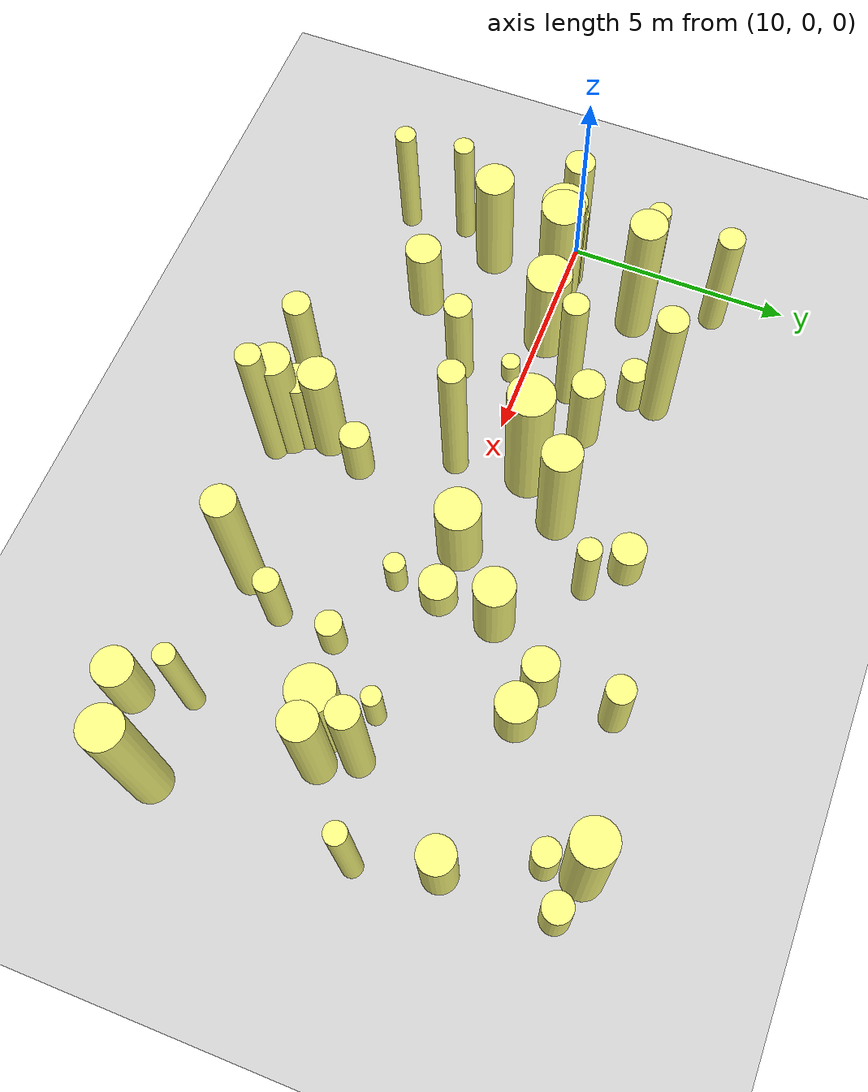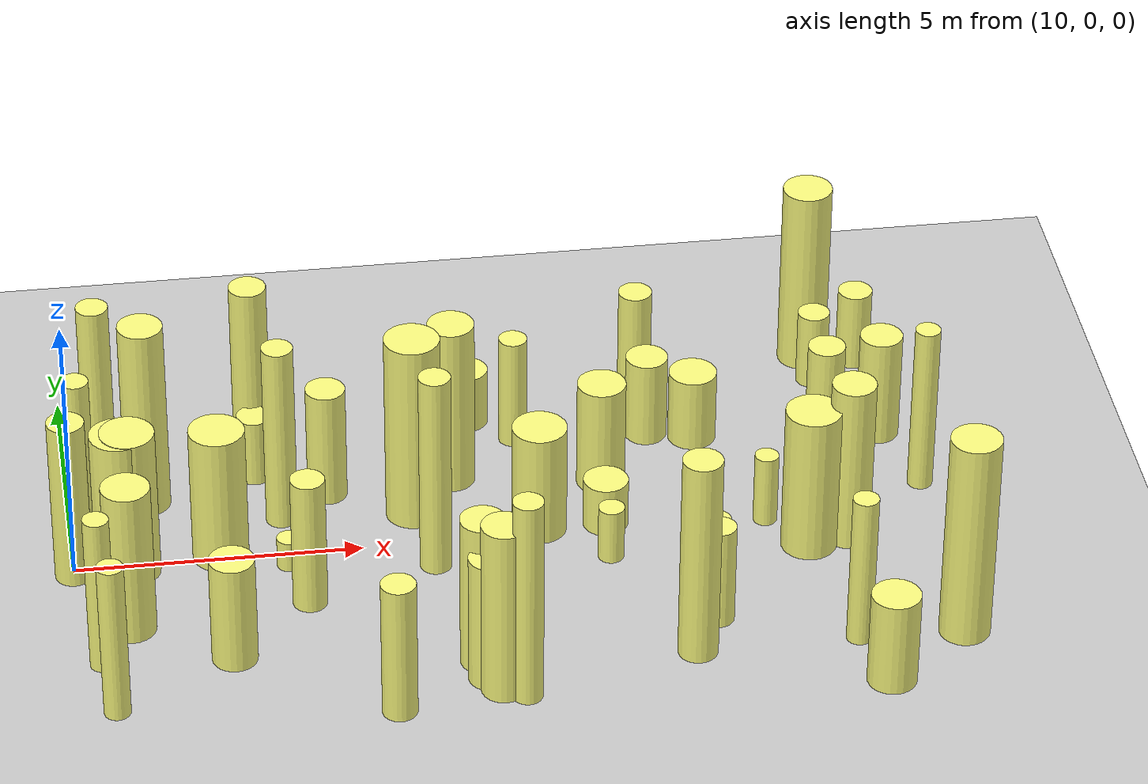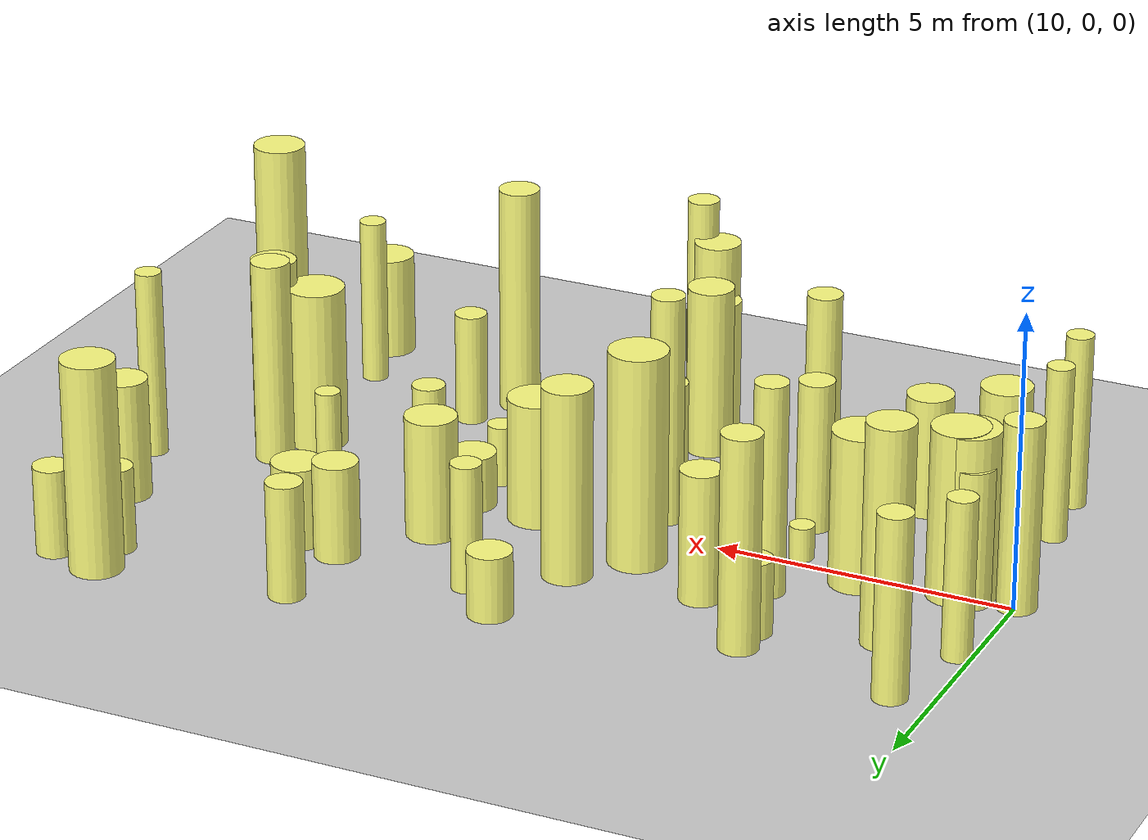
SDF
<sdf version="1.4">
 <world name="default">
  <include><uri>model://ground_plane</uri></include>
  <include><uri>model://sun</uri></include>
  <model name="forest">
   <static>true</static>
   <link name="cylinder3">
    <pose>17.265367207344035 -4.435934743909113 1.9896705401178723 0 0 0</pose>
    <visual name="visual">
     <geometry>
      <cylinder><radius>0.2630179309103886</radius><length>3.9793410802357445</length></cylinder>
     </geometry>
     <material>
      <ambient>0.6 0.6 0.6 1</ambient>
      <diffuse>1 1 0.5 1</diffuse>
      <specular>0 0 0</specular>
      <emissive>0 0 0 1</emissive>
     </material>
    </visual>
    <collision name="collision">
     <geometry>
      <cylinder><radius>0.2630179309103886</radius><length>3.9793410802357445</length></cylinder>
     </geometry>
     <max_contacts>0</max_contacts>
    </collision>
   </link>
   <link name="cylinder9">
    <pose>15.985617696197174 0.9436524453826465 1.8260758718976415 0 0 0</pose>
    <visual name="visual">
     <geometry><cylinder><radius>0.48607248846661</radius><length>3.652151743795283</length></cylinder></geometry>
     <material>
      <ambient>0.6 0.6 0.6 1</ambient>
      <diffuse>1 1 0.5 1</diffuse>
      <specular>0 0 0</specular>
      <emissive>0 0 0 1</emissive>
     </material>
    </visual>
    <collision name="collision">
     <geometry><cylinder><radius>0.48607248846661</radius><length>3.652151743795283</length></cylinder></geometry>
     <max_contacts>0</max_contacts>
    </collision>
   </link>
   <link name="cylinder14">
    <pose>9.988890898511393 -0.10635863900852982 1.6012139004685157 0 0 0</pose>
    <visual name="visual">
     <geometry>
      <cylinder><radius>0.32412791843226907</radius><length>3.2024278009370315</length></cylinder>
     </geometry>
     <material>
      <ambient>0.6 0.6 0.6 1</ambient>
      <diffuse>1 1 0.5 1</diffuse>
      <specular>0 0 0</specular>
      <emissive>0 0 0 1</emissive>
     </material>
    </visual>
    <collision name="collision">
     <geometry>
      <cylinder><radius>0.32412791843226907</radius><length>3.2024278009370315</length></cylinder>
     </geometry>
     <max_contacts>0</max_contacts>
    </collision>
   </link>
   <link name="cylinder18">
    <pose>13.68541646399914 1.0580866153303345 1.800160267333065 0 0 0</pose>
    <visual name="visual">
     <geometry>
      <cylinder><radius>0.27594449265318627</radius><length>3.60032053466613</length></cylinder>
     </geometry>
     <material>
      <ambient>0.6 0.6 0.6 1</ambient>
      <diffuse>1 1 0.5 1</diffuse>
      <specular>0 0 0</specular>
      <emissive>0 0 0 1</emissive>
     </material>
    </visual>
    <collision name="collision">
     <geometry>
      <cylinder><radius>0.27594449265318627</radius><length>3.60032053466613</length></cylinder>
     </geometry>
     <max_contacts>0</max_contacts>
    </collision>
   </link>
   <link name="cylinder20">
    <pose>10.874119869617068 -1.7394531326744778 1.4703682676152616 0 0 0</pose>
    <visual name="visual">
     <geometry>
      <cylinder><radius>0.42072285934733505</radius><length>2.9407365352305233</length></cylinder>
     </geometry>
     <material>
      <ambient>0.6 0.6 0.6 1</ambient>
      <diffuse>1 1 0.5 1</diffuse>
      <specular>0 0 0</specular>
      <emissive>0 0 0 1</emissive>
     </material>
    </visual>
    <collision name="collision">
     <geometry>
      <cylinder><radius>0.42072285934733505</radius><length>2.9407365352305233</length></cylinder>
     </geometry>
     <max_contacts>0</max_contacts>
    </collision>
   </link>
   <link name="cylinder28">
    <pose>22.040592122322238 -0.05238045770961541 0.6816336000675187 0 0 0</pose>
    <visual name="visual">
     <geometry>
      <cylinder><radius>0.2100579568130027</radius><length>1.3632672001350374</length></cylinder>
     </geometry>
     <material>
      <ambient>0.6 0.6 0.6 1</ambient>
      <diffuse>1 1 0.5 1</diffuse>
      <specular>0 0 0</specular>
      <emissive>0 0 0 1</emissive>
     </material>
    </visual>
    <collision name="collision">
     <geometry>
      <cylinder><radius>0.2100579568130027</radius><length>1.3632672001350374</length></cylinder>
     </geometry>
     <max_contacts>0</max_contacts>
    </collision>
   </link>
   <link name="cylinder29">
    <pose>18.001185813643076 2.93607405292358 1.0759568169458518 0 0 0</pose>
    <visual name="visual">
     <geometry>
      <cylinder><radius>0.2527964529935181</radius><length>2.1519136338917035</length></cylinder>
     </geometry>
     <material>
      <ambient>0.6 0.6 0.6 1</ambient>
      <diffuse>1 1 0.5 1</diffuse>
      <specular>0 0 0</specular>
      <emissive>0 0 0 1</emissive>
     </material>
    </visual>
    <collision name="collision">
     <geometry>
      <cylinder><radius>0.2527964529935181</radius><length>2.1519136338917035</length></cylinder>
     </geometry>
     <max_contacts>0</max_contacts>
    </collision>
   </link>
   <link name="cylinder31">
    <pose>11.01051874437303 -0.11071449453270876 1.4503504880614888 0 0 0</pose>
    <visual name="visual">
     <geometry>
      <cylinder><radius>0.4754666087721422</radius><length>2.9007009761229776</length></cylinder>
     </geometry>
     <material>
      <ambient>0.6 0.6 0.6 1</ambient>
      <diffuse>1 1 0.5 1</diffuse>
      <specular>0 0 0</specular>
      <emissive>0 0 0 1</emissive>
     </material>
    </visual>
    <collision name="collision">
     <geometry>
      <cylinder><radius>0.4754666087721422</radius><length>2.9007009761229776</length></cylinder>
     </geometry>
     <max_contacts>0</max_contacts>
    </collision>
   </link>
   <link name="cylinder33">
    <pose>10.72798780575858 0.021244791245167427 1.170868298967777 0 0 0</pose>
    <visual name="visual">
     <geometry>
      <cylinder><radius>0.3568445559899352</radius><length>2.341736597935554</length></cylinder>
     </geometry>
     <material>
      <ambient>0.6 0.6 0.6 1</ambient>
      <diffuse>1 1 0.5 1</diffuse>
      <specular>0 0 0</specular>
      <emissive>0 0 0 1</emissive>
     </material>
    </visual>
    <collision name="collision">
     <geometry>
      <cylinder><radius>0.3568445559899352</radius><length>2.341736597935554</length></cylinder>
     </geometry>
     <max_contacts>0</max_contacts>
    </collision>
   </link>
   <link name="cylinder35">
    <pose>16.19008777836767 -0.6306350934050116 1.9619961511160935 0 0 0</pose>
    <visual name="visual">
     <geometry>
      <cylinder><radius>0.27798618074931264</radius><length>3.923992302232187</length></cylinder>
     </geometry>
     <material>
      <ambient>0.6 0.6 0.6 1</ambient>
      <diffuse>1 1 0.5 1</diffuse>
      <specular>0 0 0</specular>
      <emissive>0 0 0 1</emissive>
     </material>
    </visual>
    <collision name="collision">
     <geometry>
      <cylinder><radius>0.27798618074931264</radius><length>3.923992302232187</length></cylinder>
     </geometry>
     <max_contacts>0</max_contacts>
    </collision>
   </link>
   <link name="cylinder40">
    <pose>10.660524633554068 3.499946105512384 1.5432281684198523 0 0 0</pose>
    <visual name="visual">
     <geometry>
      <cylinder><radius>0.28470364802899606</radius><length>3.0864563368397047</length></cylinder>
     </geometry>
     <material>
      <ambient>0.6 0.6 0.6 1</ambient>
      <diffuse>1 1 0.5 1</diffuse>
      <specular>0 0 0</specular>
      <emissive>0 0 0 1</emissive>
     </material>
    </visual>
    <collision name="collision">
     <geometry>
      <cylinder><radius>0.28470364802899606</radius><length>3.0864563368397047</length></cylinder>
     </geometry>
     <max_contacts>0</max_contacts>
    </collision>
   </link>
   <link name="cylinder41">
    <pose>12.53007402628738 -2.78212828602196 1.0298456456420904 0 0 0</pose>
    <visual name="visual">
     <geometry>
      <cylinder><radius>0.3911711873929431</radius><length>2.0596912912841807</length></cylinder>
     </geometry>
     <material>
      <ambient>0.6 0.6 0.6 1</ambient>
      <diffuse>1 1 0.5 1</diffuse>
      <specular>0 0 0</specular>
      <emissive>0 0 0 1</emissive>
     </material>
    </visual>
    <collision name="collision">
     <geometry>
      <cylinder><radius>0.3911711873929431</radius><length>2.0596912912841807</length></cylinder>
     </geometry>
     <max_contacts>0</max_contacts>
    </collision>
   </link>
   <link name="cylinder42">
    <pose>10.472146141614168 -3.9869977058093253 1.498618579816737 0 0 0</pose>
    <visual name="visual">
     <geometry>
      <cylinder><radius>0.2275832722975526</radius><length>2.997237159633474</length></cylinder>
     </geometry>
     <material>
      <ambient>0.6 0.6 0.6 1</ambient>
      <diffuse>1 1 0.5 1</diffuse>
      <specular>0 0 0</specular>
      <emissive>0 0 0 1</emissive>
     </material>
    </visual>
    <collision name="collision">
     <geometry>
      <cylinder><radius>0.2275832722975526</radius><length>2.997237159633474</length></cylinder>
     </geometry>
     <max_contacts>0</max_contacts>
    </collision>
   </link>
   <link name="cylinder43">
    <pose>10.32296397878433 -2.6706954009681927 1.505286474879933 0 0 0</pose>
    <visual name="visual">
     <geometry>
      <cylinder><radius>0.22288538479372974</radius><length>3.010572949759866</length></cylinder>
     </geometry>
     <material>
      <ambient>0.6 0.6 0.6 1</ambient>
      <diffuse>1 1 0.5 1</diffuse>
      <specular>0 0 0</specular>
      <emissive>0 0 0 1</emissive>
     </material>
    </visual>
    <collision name="collision">
     <geometry>
      <cylinder><radius>0.22288538479372974</radius><length>3.010572949759866</length></cylinder>
     </geometry>
     <max_contacts>0</max_contacts>
    </collision>
   </link>
   <link name="cylinder46">
    <pose>22.66913237175904 -0.8634470856299306 1.4013999313948315 0 0 0</pose>
    <visual name="visual">
     <geometry>
      <cylinder><radius>0.4897266639417963</radius><length>2.802799862789663</length></cylinder>
     </geometry>
     <material>
      <ambient>0.6 0.6 0.6 1</ambient>
      <diffuse>1 1 0.5 1</diffuse>
      <specular>0 0 0</specular>
      <emissive>0 0 0 1</emissive>
     </material>
    </visual>
    <collision name="collision">
     <geometry>
      <cylinder><radius>0.4897266639417963</radius><length>2.802799862789663</length></cylinder>
     </geometry>
     <max_contacts>0</max_contacts>
    </collision>
   </link>
   <link name="cylinder49">
    <pose>14.550531728049812 1.71483162596736 1.1135379873972044 0 0 0</pose>
    <visual name="visual">
     <geometry>
      <cylinder><radius>0.3496545029271595</radius><length>2.227075974794409</length></cylinder>
     </geometry>
     <material>
      <ambient>0.6 0.6 0.6 1</ambient>
      <diffuse>1 1 0.5 1</diffuse>
      <specular>0 0 0</specular>
      <emissive>0 0 0 1</emissive>
     </material>
    </visual>
    <collision name="collision">
     <geometry>
      <cylinder><radius>0.3496545029271595</radius><length>2.227075974794409</length></cylinder>
     </geometry>
     <max_contacts>0</max_contacts>
    </collision>
   </link>
   <link name="cylinder52">
    <pose>10.234479679962988 1.834083787359745 1.3494731141163883 0 0 0</pose>
    <visual name="visual">
     <geometry>
      <cylinder><radius>0.2448913619247631</radius><length>2.6989462282327765</length></cylinder>
     </geometry>
     <material>
      <ambient>0.6 0.6 0.6 1</ambient>
      <diffuse>1 1 0.5 1</diffuse>
      <specular>0 0 0</specular>
      <emissive>0 0 0 1</emissive>
     </material>
    </visual>
    <collision name="collision">
     <geometry>
      <cylinder><radius>0.2448913619247631</radius><length>2.6989462282327765</length></cylinder>
     </geometry>
     <max_contacts>0</max_contacts>
    </collision>
   </link>
   <link name="cylinder53">
    <pose>23.356790306379672 -4.807205801807449 0.8871020642010183 0 0 0</pose>
    <visual name="visual">
     <geometry>
      <cylinder><radius>0.422632846903202</radius><length>1.7742041284020367</length></cylinder>
     </geometry>
     <material>
      <ambient>0.6 0.6 0.6 1</ambient>
      <diffuse>1 1 0.5 1</diffuse>
      <specular>0 0 0</specular>
      <emissive>0 0 0 1</emissive>
     </material>
    </visual>
    <collision name="collision">
     <geometry>
      <cylinder><radius>0.422632846903202</radius><length>1.7742041284020367</length></cylinder>
     </geometry>
     <max_contacts>0</max_contacts>
    </collision>
   </link>
   <link name="cylinder54">
    <pose>24.487264170975486 2.290624101335781 1.0378243851109623 0 0 0</pose>
    <visual name="visual">
     <geometry>
      <cylinder><radius>0.3793264267058001</radius><length>2.0756487702219246</length></cylinder>
     </geometry>
     <material>
      <ambient>0.6 0.6 0.6 1</ambient>
      <diffuse>1 1 0.5 1</diffuse>
      <specular>0 0 0</specular>
      <emissive>0 0 0 1</emissive>
     </material>
    </visual>
    <collision name="collision">
     <geometry>
      <cylinder><radius>0.3793264267058001</radius><length>2.0756487702219246</length></cylinder>
     </geometry>
     <max_contacts>0</max_contacts>
    </collision>
   </link>
   <link name="cylinder56">
    <pose>23.627475249869676 4.087026613910105 0.7262262632417797 0 0 0</pose>
    <visual name="visual">
     <geometry>
      <cylinder><radius>0.28653496977783505</radius><length>1.4524525264835595</length></cylinder>
     </geometry>
     <material>
      <ambient>0.6 0.6 0.6 1</ambient>
      <diffuse>1 1 0.5 1</diffuse>
      <specular>0 0 0</specular>
      <emissive>0 0 0 1</emissive>
     </material>
    </visual>
    <collision name="collision">
     <geometry>
      <cylinder><radius>0.28653496977783505</radius><length>1.4524525264835595</length></cylinder>
     </geometry>
     <max_contacts>0</max_contacts>
    </collision>
   </link>
   <link name="cylinder60">
    <pose>23.03389517982226 -3.6052778285962206 1.4446867309733429 0 0 0</pose>
    <visual name="visual">
     <geometry>
      <cylinder><radius>0.22329579768393998</radius><length>2.8893734619466858</length></cylinder>
     </geometry>
     <material>
      <ambient>0.6 0.6 0.6 1</ambient>
      <diffuse>1 1 0.5 1</diffuse>
      <specular>0 0 0</specular>
      <emissive>0 0 0 1</emissive>
     </material>
    </visual>
    <collision name="collision">
     <geometry>
      <cylinder><radius>0.22329579768393998</radius><length>2.8893734619466858</length></cylinder>
     </geometry>
     <max_contacts>0</max_contacts>
    </collision>
   </link>
   <link name="cylinder61">
    <pose>20.3746311714783 2.7949430357938176 0.8248853213016196 0 0 0</pose>
    <visual name="visual">
     <geometry>
      <cylinder><radius>0.37489593620173245</radius><length>1.6497706426032392</length></cylinder>
     </geometry>
     <material>
      <ambient>0.6 0.6 0.6 1</ambient>
      <diffuse>1 1 0.5 1</diffuse>
      <specular>0 0 0</specular>
      <emissive>0 0 0 1</emissive>
     </material>
    </visual>
    <collision name="collision">
     <geometry>
      <cylinder><radius>0.37489593620173245</radius><length>1.6497706426032392</length></cylinder>
     </geometry>
     <max_contacts>0</max_contacts>
    </collision>
   </link>
   <link name="cylinder65">
    <pose>24.938961947113484 0.6699475104403003 1.618653470126563 0 0 0</pose>
    <visual name="visual">
     <geometry>
      <cylinder><radius>0.2213672401464681</radius><length>3.237306940253126</length></cylinder>
     </geometry>
     <material>
      <ambient>0.6 0.6 0.6 1</ambient>
      <diffuse>1 1 0.5 1</diffuse>
      <specular>0 0 0</specular>
      <emissive>0 0 0 1</emissive>
     </material>
    </visual>
    <collision name="collision">
     <geometry>
      <cylinder><radius>0.2213672401464681</radius><length>3.237306940253126</length></cylinder>
     </geometry>
     <max_contacts>0</max_contacts>
    </collision>
   </link>
   <link name="cylinder66">
    <pose>13.68109060385482 -0.28891109133629733 0.28853526098540355 0 0 0</pose>
    <visual name="visual">
     <geometry>
      <cylinder><radius>0.20655135310104455</radius><length>0.5770705219708071</length></cylinder>
     </geometry>
     <material>
      <ambient>0.6 0.6 0.6 1</ambient>
      <diffuse>1 1 0.5 1</diffuse>
      <specular>0 0 0</specular>
      <emissive>0 0 0 1</emissive>
     </material>
    </visual>
    <collision name="collision">
     <geometry>
      <cylinder><radius>0.20655135310104455</radius><length>0.5770705219708071</length></cylinder>
     </geometry>
     <max_contacts>0</max_contacts>
    </collision>
   </link>
   <link name="cylinder68">
    <pose>15.114163099118024 -4.56909536329378 1.3134578329043127 0 0 0</pose>
    <visual name="visual">
     <geometry>
      <cylinder><radius>0.3001657237598002</radius><length>2.6269156658086255</length></cylinder>
     </geometry>
     <material>
      <ambient>0.6 0.6 0.6 1</ambient>
      <diffuse>1 1 0.5 1</diffuse>
      <specular>0 0 0</specular>
      <emissive>0 0 0 1</emissive>
     </material>
    </visual>
    <collision name="collision">
     <geometry>
      <cylinder><radius>0.3001657237598002</radius><length>2.6269156658086255</length></cylinder>
     </geometry>
     <max_contacts>0</max_contacts>
    </collision>
   </link>
   <link name="cylinder70">
    <pose>19.263962168119868 0.19779896826057097 0.4688701589837203 0 0 0</pose>
    <visual name="visual">
     <geometry>
      <cylinder><radius>0.3955365020443804</radius><length>0.9377403179674406</length></cylinder>
     </geometry>
     <material>
      <ambient>0.6 0.6 0.6 1</ambient>
      <diffuse>1 1 0.5 1</diffuse>
      <specular>0 0 0</specular>
      <emissive>0 0 0 1</emissive>
     </material>
    </visual>
    <collision name="collision">
     <geometry>
      <cylinder><radius>0.3955365020443804</radius><length>0.9377403179674406</length></cylinder>
     </geometry>
     <max_contacts>0</max_contacts>
    </collision>
   </link>
   <link name="cylinder72">
    <pose>18.10067956637038 0.20889789100631262 1.0684822231156716 0 0 0</pose>
    <visual name="visual">
     <geometry>
      <cylinder><radius>0.4791515794332464</radius><length>2.1369644462313433</length></cylinder>
     </geometry>
     <material>
      <ambient>0.6 0.6 0.6 1</ambient>
      <diffuse>1 1 0.5 1</diffuse>
      <specular>0 0 0</specular>
      <emissive>0 0 0 1</emissive>
     </material>
    </visual>
    <collision name="collision">
     <geometry>
      <cylinder><radius>0.4791515794332464</radius><length>2.1369644462313433</length></cylinder>
     </geometry>
     <max_contacts>0</max_contacts>
    </collision>
   </link>
   <link name="cylinder75">
    <pose>24.48148417213259 4.6067890700501 0.7538468771736562 0 0 0</pose>
    <visual name="visual">
     <geometry>
      <cylinder><radius>0.30800400913168346</radius><length>1.5076937543473123</length></cylinder>
     </geometry>
     <material>
      <ambient>0.6 0.6 0.6 1</ambient>
      <diffuse>1 1 0.5 1</diffuse>
      <specular>0 0 0</specular>
      <emissive>0 0 0 1</emissive>
     </material>
    </visual>
    <collision name="collision">
     <geometry>
      <cylinder><radius>0.30800400913168346</radius><length>1.5076937543473123</length></cylinder>
     </geometry>
     <max_contacts>0</max_contacts>
    </collision>
   </link>
   <link name="cylinder77">
    <pose>20.762198931305193 -2.7679373218280547 0.9660033638375523 0 0 0</pose>
    <visual name="visual">
     <geometry>
      <cylinder><radius>0.2704505073360964</radius><length>1.9320067276751045</length></cylinder>
     </geometry>
     <material>
      <ambient>0.6 0.6 0.6 1</ambient>
      <diffuse>1 1 0.5 1</diffuse>
      <specular>0 0 0</specular>
      <emissive>0 0 0 1</emissive>
     </material>
    </visual>
    <collision name="collision">
     <geometry>
      <cylinder><radius>0.2704505073360964</radius><length>1.9320067276751045</length></cylinder>
     </geometry>
     <max_contacts>0</max_contacts>
    </collision>
   </link>
   <link name="cylinder78">
    <pose>19.21857678669612 -0.7650855328971566 0.5173898636561053 0 0 0</pose>
    <visual name="visual">
     <geometry>
      <cylinder><radius>0.2279455137779284</radius><length>1.0347797273122106</length></cylinder>
     </geometry>
     <material>
      <ambient>0.6 0.6 0.6 1</ambient>
      <diffuse>1 1 0.5 1</diffuse>
      <specular>0 0 0</specular>
      <emissive>0 0 0 1</emissive>
     </material>
    </visual>
    <collision name="collision">
     <geometry>
      <cylinder><radius>0.2279455137779284</radius><length>1.0347797273122106</length></cylinder>
     </geometry>
     <max_contacts>0</max_contacts>
    </collision>
   </link>
   <link name="cylinder80">
    <pose>23.37750141062248 -0.7352952456177322 1.6024737212899194 0 0 0</pose>
    <visual name="visual">
     <geometry>
      <cylinder><radius>0.38622534871499914</radius><length>3.2049474425798388</length></cylinder>
     </geometry>
     <material>
      <ambient>0.6 0.6 0.6 1</ambient>
      <diffuse>1 1 0.5 1</diffuse>
      <specular>0 0 0</specular>
      <emissive>0 0 0 1</emissive>
     </material>
    </visual>
    <collision name="collision">
     <geometry>
      <cylinder><radius>0.38622534871499914</radius><length>3.2049474425798388</length></cylinder>
     </geometry>
     <max_contacts>0</max_contacts>
    </collision>
   </link>
   <link name="cylinder83">
    <pose>16.772000080997124 1.8742148278188449 1.6390451266362858 0 0 0</pose>
    <visual name="visual">
     <geometry>
      <cylinder><radius>0.4129255898114943</radius><length>3.2780902532725715</length></cylinder>
     </geometry>
     <material>
      <ambient>0.6 0.6 0.6 1</ambient>
      <diffuse>1 1 0.5 1</diffuse>
      <specular>0 0 0</specular>
      <emissive>0 0 0 1</emissive>
     </material>
    </visual>
    <collision name="collision">
     <geometry>
      <cylinder><radius>0.4129255898114943</radius><length>3.2780902532725715</length></cylinder>
     </geometry>
     <max_contacts>0</max_contacts>
    </collision>
   </link>
   <link name="cylinder84">
    <pose>11.406674376993273 1.8441490313882811 1.8613686002147816 0 0 0</pose>
    <visual name="visual">
     <geometry>
      <cylinder><radius>0.39629400795936476</radius><length>3.722737200429563</length></cylinder>
     </geometry>
     <material>
      <ambient>0.6 0.6 0.6 1</ambient>
      <diffuse>1 1 0.5 1</diffuse>
      <specular>0 0 0</specular>
      <emissive>0 0 0 1</emissive>
     </material>
    </visual>
    <collision name="collision">
     <geometry>
      <cylinder><radius>0.39629400795936476</radius><length>3.722737200429563</length></cylinder>
     </geometry>
     <max_contacts>0</max_contacts>
    </collision>
   </link>
   <link name="cylinder88">
    <pose>20.4109790131388 4.397549885792817 0.9846797503636374 0 0 0</pose>
    <visual name="visual">
     <geometry>
      <cylinder><radius>0.3004762202274561</radius><length>1.9693595007272748</length></cylinder>
     </geometry>
     <material>
      <ambient>0.6 0.6 0.6 1</ambient>
      <diffuse>1 1 0.5 1</diffuse>
      <specular>0 0 0</specular>
      <emissive>0 0 0 1</emissive>
     </material>
    </visual>
    <collision name="collision">
     <geometry>
      <cylinder><radius>0.3004762202274561</radius><length>1.9693595007272748</length></cylinder>
     </geometry>
     <max_contacts>0</max_contacts>
    </collision>
   </link>
   <link name="cylinder93">
    <pose>20.268657082332297 -3.620099780290098 1.9736148277200112 0 0 0</pose>
    <visual name="visual">
     <geometry>
      <cylinder><radius>0.34357895505836666</radius><length>3.9472296554400224</length></cylinder>
     </geometry>
     <material>
      <ambient>0.6 0.6 0.6 1</ambient>
      <diffuse>1 1 0.5 1</diffuse>
      <specular>0 0 0</specular>
      <emissive>0 0 0 1</emissive>
     </material>
    </visual>
    <collision name="collision">
     <geometry>
      <cylinder><radius>0.34357895505836666</radius><length>3.9472296554400224</length></cylinder>
     </geometry>
     <max_contacts>0</max_contacts>
    </collision>
   </link>
   <link name="cylinder94">
    <pose>13.93920718657914 -1.4045385200601448 1.2886951756773075 0 0 0</pose>
    <visual name="visual">
     <geometry>
      <cylinder><radius>0.2985378338364051</radius><length>2.577390351354615</length></cylinder>
     </geometry>
     <material>
      <ambient>0.6 0.6 0.6 1</ambient>
      <diffuse>1 1 0.5 1</diffuse>
      <specular>0 0 0</specular>
      <emissive>0 0 0 1</emissive>
     </material>
    </visual>
    <collision name="collision">
     <geometry>
      <cylinder><radius>0.2985378338364051</radius><length>2.577390351354615</length></cylinder>
     </geometry>
     <max_contacts>0</max_contacts>
    </collision>
   </link>
   <link name="cylinder96">
    <pose>16.900375973684703 -4.208322645899737 1.6868478263365692 0 0 0</pose>
    <visual name="visual">
     <geometry>
      <cylinder><radius>0.3894020398563631</radius><length>3.3736956526731383</length></cylinder>
     </geometry>
     <material>
      <ambient>0.6 0.6 0.6 1</ambient>
      <diffuse>1 1 0.5 1</diffuse>
      <specular>0 0 0</specular>
      <emissive>0 0 0 1</emissive>
     </material>
    </visual>
    <collision name="collision">
     <geometry>
      <cylinder><radius>0.3894020398563631</radius><length>3.3736956526731383</length></cylinder>
     </geometry>
     <max_contacts>0</max_contacts>
    </collision>
   </link>
   <link name="cylinder99">
    <pose>10.855566445018773 -0.13432291012199116 1.4452513392497006 0 0 0</pose>
    <visual name="visual">
     <geometry>
      <cylinder><radius>0.4936878978247694</radius><length>2.8905026784994012</length></cylinder>
     </geometry>
     <material>
      <ambient>0.6 0.6 0.6 1</ambient>
      <diffuse>1 1 0.5 1</diffuse>
      <specular>0 0 0</specular>
      <emissive>0 0 0 1</emissive>
     </material>
    </visual>
    <collision name="collision">
     <geometry>
      <cylinder><radius>0.4936878978247694</radius><length>2.8905026784994012</length></cylinder>
     </geometry>
     <max_contacts>0</max_contacts>
    </collision>
   </link>
   <link name="cylinder102">
    <pose>20.906438832018793 -1.469339411290096 0.5608936459775025 0 0 0</pose>
    <visual name="visual">
     <geometry>
      <cylinder><radius>0.28090166626401575</radius><length>1.121787291955005</length></cylinder>
     </geometry>
     <material>
      <ambient>0.6 0.6 0.6 1</ambient>
      <diffuse>1 1 0.5 1</diffuse>
      <specular>0 0 0</specular>
      <emissive>0 0 0 1</emissive>
     </material>
    </visual>
    <collision name="collision">
     <geometry>
      <cylinder><radius>0.28090166626401575</radius><length>1.121787291955005</length></cylinder>
     </geometry>
     <max_contacts>0</max_contacts>
    </collision>
   </link>
   <link name="cylinder107">
    <pose>13.34963997162852 2.98274472597884 1.807686686960489 0 0 0</pose>
    <visual name="visual">
     <geometry>
      <cylinder><radius>0.32866338244037935</radius><length>3.615373373920978</length></cylinder>
     </geometry>
     <material>
      <ambient>0.6 0.6 0.6 1</ambient>
      <diffuse>1 1 0.5 1</diffuse>
      <specular>0 0 0</specular>
      <emissive>0 0 0 1</emissive>
     </material>
    </visual>
    <collision name="collision">
     <geometry>
      <cylinder><radius>0.32866338244037935</radius><length>3.615373373920978</length></cylinder>
     </geometry>
     <max_contacts>0</max_contacts>
    </collision>
   </link>
   <link name="cylinder109">
    <pose>12.540406807740226 0.13338350972026536 1.320140086333771 0 0 0</pose>
    <visual name="visual">
     <geometry>
      <cylinder><radius>0.48770719255457323</radius><length>2.640280172667542</length></cylinder>
     </geometry>
     <material>
      <ambient>0.6 0.6 0.6 1</ambient>
      <diffuse>1 1 0.5 1</diffuse>
      <specular>0 0 0</specular>
      <emissive>0 0 0 1</emissive>
     </material>
    </visual>
    <collision name="collision">
     <geometry>
      <cylinder><radius>0.48770719255457323</radius><length>2.640280172667542</length></cylinder>
     </geometry>
     <max_contacts>0</max_contacts>
    </collision>
   </link>
   <link name="cylinder110">
    <pose>17.017037839033364 -2.5493546465916914 0.7388104976958294 0 0 0</pose>
    <visual name="visual">
     <geometry>
      <cylinder><radius>0.3215876176264467</radius><length>1.4776209953916588</length></cylinder>
     </geometry>
     <material>
      <ambient>0.6 0.6 0.6 1</ambient>
      <diffuse>1 1 0.5 1</diffuse>
      <specular>0 0 0</specular>
      <emissive>0 0 0 1</emissive>
     </material>
    </visual>
    <collision name="collision">
     <geometry>
      <cylinder><radius>0.3215876176264467</radius><length>1.4776209953916588</length></cylinder>
     </geometry>
     <max_contacts>0</max_contacts>
    </collision>
   </link>
   <link name="cylinder116">
    <pose>24.833866721827178 -3.6464264612413344 1.981856688967177 0 0 0</pose>
    <visual name="visual">
     <geometry>
      <cylinder><radius>0.4393166909250849</radius><length>3.963713377934354</length></cylinder>
     </geometry>
     <material>
      <ambient>0.6 0.6 0.6 1</ambient>
      <diffuse>1 1 0.5 1</diffuse>
      <specular>0 0 0</specular>
      <emissive>0 0 0 1</emissive>
     </material>
    </visual>
    <collision name="collision">
     <geometry>
      <cylinder><radius>0.4393166909250849</radius><length>3.963713377934354</length></cylinder>
     </geometry>
     <max_contacts>0</max_contacts>
    </collision>
   </link>
   <link name="cylinder118">
    <pose>23.023556115751695 0.0024448159262080438 1.7581536379762395 0 0 0</pose>
    <visual name="visual">
     <geometry><cylinder><radius>0.322415292872928</radius><length>3.516307275952479</length></cylinder></geometry>
     <material>
      <ambient>0.6 0.6 0.6 1</ambient>
      <diffuse>1 1 0.5 1</diffuse>
      <specular>0 0 0</specular>
      <emissive>0 0 0 1</emissive>
     </material>
    </visual>
    <collision name="collision">
     <geometry><cylinder><radius>0.322415292872928</radius><length>3.516307275952479</length></cylinder></geometry>
     <max_contacts>0</max_contacts>
    </collision>
   </link>
   <link name="cylinder121">
    <pose>21.17493118768357 2.593648957478379 0.6949541490225194 0 0 0</pose>
    <visual name="visual">
     <geometry>
      <cylinder><radius>0.42606770118521065</radius><length>1.3899082980450388</length></cylinder>
     </geometry>
     <material>
      <ambient>0.6 0.6 0.6 1</ambient>
      <diffuse>1 1 0.5 1</diffuse>
      <specular>0 0 0</specular>
      <emissive>0 0 0 1</emissive>
     </material>
    </visual>
    <collision name="collision">
     <geometry>
      <cylinder><radius>0.42606770118521065</radius><length>1.3899082980450388</length></cylinder>
     </geometry>
     <max_contacts>0</max_contacts>
    </collision>
   </link>
   <link name="cylinder124">
    <pose>19.364381788715093 1.4594781881503405 1.0398395023709182 0 0 0</pose>
    <visual name="visual">
     <geometry>
      <cylinder><radius>0.4293578233314094</radius><length>2.0796790047418363</length></cylinder>
     </geometry>
     <material>
      <ambient>0.6 0.6 0.6 1</ambient>
      <diffuse>1 1 0.5 1</diffuse>
      <specular>0 0 0</specular>
      <emissive>0 0 0 1</emissive>
     </material>
    </visual>
    <collision name="collision">
     <geometry>
      <cylinder><radius>0.4293578233314094</radius><length>2.0796790047418363</length></cylinder>
     </geometry>
     <max_contacts>0</max_contacts>
    </collision>
   </link>
   <link name="cylinder133">
    <pose>13.342601955673857 2.427955165661184 0.6398584861664094 0 0 0</pose>
    <visual name="visual">
     <geometry>
      <cylinder><radius>0.30230860007051424</radius><length>1.2797169723328188</length></cylinder>
     </geometry>
     <material>
      <ambient>0.6 0.6 0.6 1</ambient>
      <diffuse>1 1 0.5 1</diffuse>
      <specular>0 0 0</specular>
      <emissive>0 0 0 1</emissive>
     </material>
    </visual>
    <collision name="collision">
     <geometry>
      <cylinder><radius>0.30230860007051424</radius><length>1.2797169723328188</length></cylinder>
     </geometry>
     <max_contacts>0</max_contacts>
    </collision>
   </link>
   <link name="cylinder135">
    <pose>16.700264325640802 -3.8788440718743455 1.2452352499840225 0 0 0</pose>
    <visual name="visual">
     <geometry>
      <cylinder><radius>0.3578265755023292</radius><length>2.490470499968045</length></cylinder>
     </geometry>
     <material>
      <ambient>0.6 0.6 0.6 1</ambient>
      <diffuse>1 1 0.5 1</diffuse>
      <specular>0 0 0</specular>
      <emissive>0 0 0 1</emissive>
     </material>
    </visual>
    <collision name="collision">
     <geometry>
      <cylinder><radius>0.3578265755023292</radius><length>2.490470499968045</length></cylinder>
     </geometry>
     <max_contacts>0</max_contacts>
    </collision>
   </link>
   <link name="cylinder136">
    <pose>17.266904573736795 3.6077572712284187 0.5537335509699584 0 0 0</pose>
    <visual name="visual">
     <geometry>
      <cylinder><radius>0.3663812397577314</radius><length>1.1074671019399167</length></cylinder>
     </geometry>
     <material>
      <ambient>0.6 0.6 0.6 1</ambient>
      <diffuse>1 1 0.5 1</diffuse>
      <specular>0 0 0</specular>
      <emissive>0 0 0 1</emissive>
     </material>
    </visual>
    <collision name="collision">
     <geometry>
      <cylinder><radius>0.3663812397577314</radius><length>1.1074671019399167</length></cylinder>
     </geometry>
     <max_contacts>0</max_contacts>
    </collision>
   </link>
   <link name="cylinder140">
    <pose>16.65345360547974 -3.3889216877147668 1.4636473793465719 0 0 0</pose>
    <visual name="visual">
     <geometry>
      <cylinder><radius>0.3897440664071942</radius><length>2.9272947586931437</length></cylinder>
     </geometry>
     <material>
      <ambient>0.6 0.6 0.6 1</ambient>
      <diffuse>1 1 0.5 1</diffuse>
      <specular>0 0 0</specular>
      <emissive>0 0 0 1</emissive>
     </material>
    </visual>
    <collision name="collision">
     <geometry>
      <cylinder><radius>0.3897440664071942</radius><length>2.9272947586931437</length></cylinder>
     </geometry>
     <max_contacts>0</max_contacts>
    </collision>
   </link>
   <link name="cylinder149">
    <pose>23.581223168841504 4.843289561565415 1.8078191309205878 0 0 0</pose>
    <visual name="visual">
     <geometry>
      <cylinder><radius>0.4416755210675001</radius><length>3.6156382618411755</length></cylinder>
     </geometry>
     <material>
      <ambient>0.6 0.6 0.6 1</ambient>
      <diffuse>1 1 0.5 1</diffuse>
      <specular>0 0 0</specular>
      <emissive>0 0 0 1</emissive>
     </material>
    </visual>
    <collision name="collision">
     <geometry>
      <cylinder><radius>0.4416755210675001</radius><length>3.6156382618411755</length></cylinder>
     </geometry>
     <max_contacts>0</max_contacts>
    </collision>
   </link>
  </model>
 </world>
</sdf>
